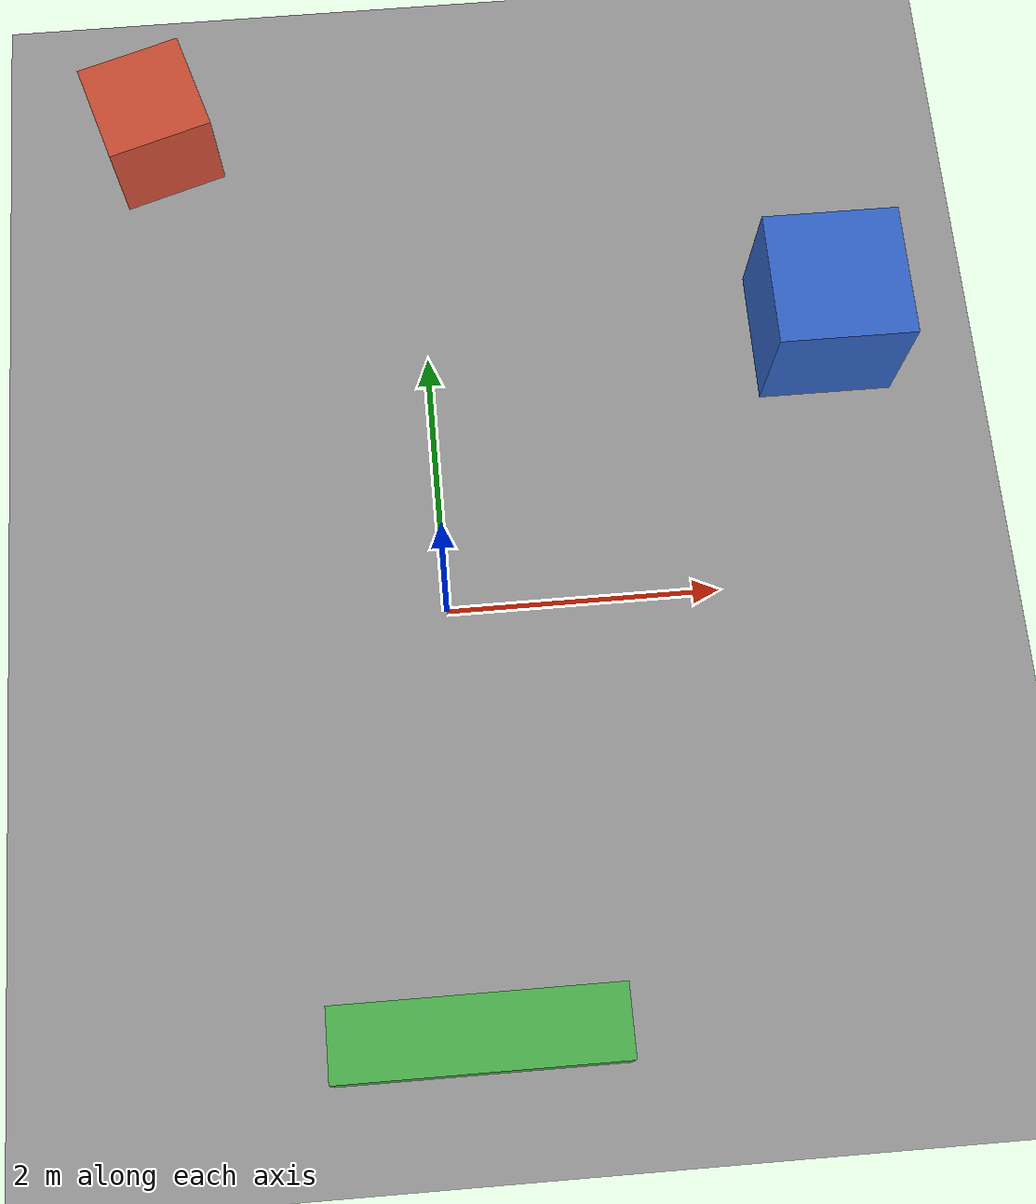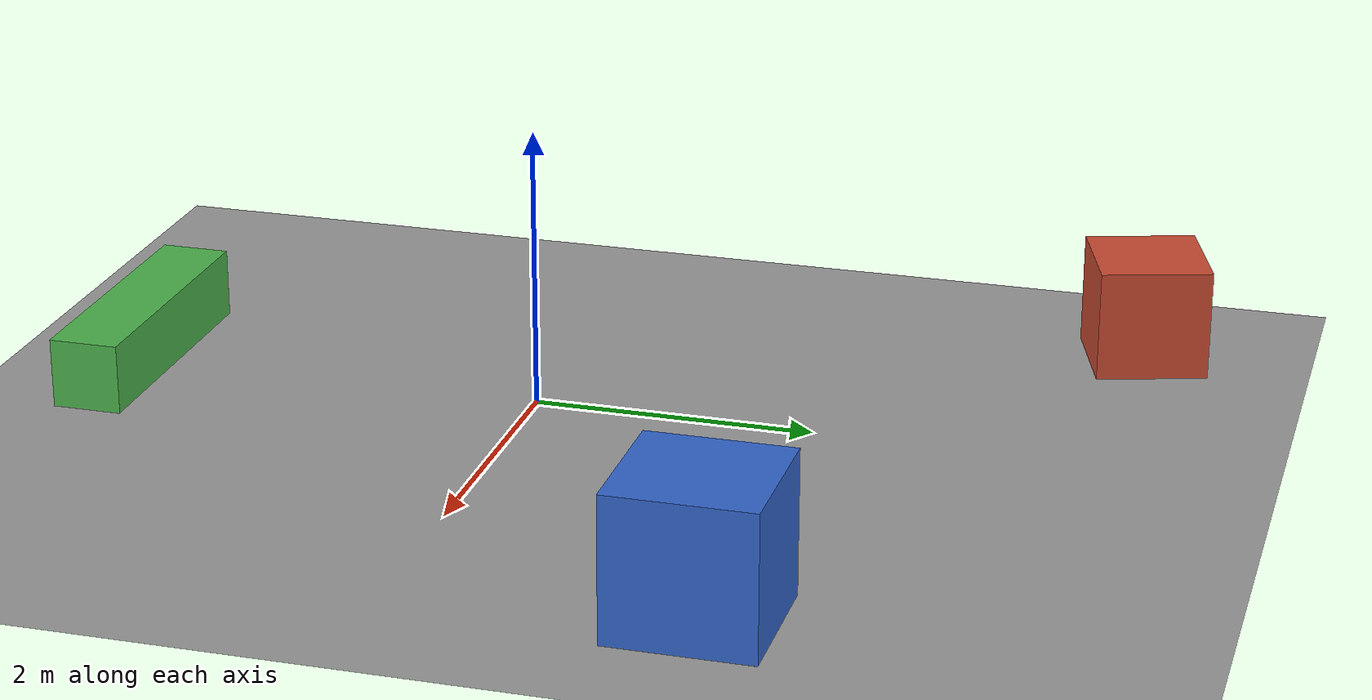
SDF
<?xml version="1.0" ?>
<sdf version="1.7">
  <world name="sim_playground">
    <physics type="ode">
      <max_step_size>0.001</max_step_size>
      <real_time_factor>1.0</real_time_factor>
    </physics>
    <plugin name="gazebo_ros_clock" filename="libgazebo_ros_init.so">
      <ros>
        <namespace>/</namespace>
      </ros>
    </plugin>

    <light name="sun" type="directional">
      <pose>0 0 10 0 0 0</pose>
      <diffuse>0.9 0.9 0.9 1</diffuse>
      <direction>-0.5 0.2 -1</direction>
    </light>

    <model name="ground_plane">
      <static>true</static>
      <link name="link">
        <collision name="collision">
          <geometry>
            <plane>
              <normal>0 0 1</normal>
              <size>80 80</size>
            </plane>
          </geometry>
        </collision>
        <visual name="visual">
          <geometry>
            <plane>
              <normal>0 0 1</normal>
              <size>80 80</size>
            </plane>
          </geometry>
          <material>
            <ambient>0.5 0.5 0.5 1</ambient>
            <diffuse>0.6 0.6 0.6 1</diffuse>
          </material>
        </visual>
      </link>
    </model>

    <model name="box_1">
      <pose>3 2 0.5 0 0 0</pose>
      <link name="link">
        <collision name="collision">
          <geometry><box><size>1 1 1</size></box></geometry>
        </collision>
        <visual name="visual">
          <geometry><box><size>1 1 1</size></box></geometry>
          <material><ambient>0.2 0.4 0.8 1</ambient></material>
        </visual>
        <inertial><mass>1</mass></inertial>
      </link>
    </model>

    <model name="box_2">
      <pose>-2 4 0.4 0 0 0.3</pose>
      <link name="link">
        <collision name="collision">
          <geometry><box><size>0.8 0.8 0.8</size></box></geometry>
        </collision>
        <visual name="visual">
          <geometry><box><size>0.8 0.8 0.8</size></box></geometry>
          <material><ambient>0.8 0.3 0.2 1</ambient></material>
        </visual>
        <inertial><mass>1</mass></inertial>
      </link>
    </model>

    <model name="box_3">
      <pose>0 -3 0.25 0 0 0</pose>
      <link name="link">
        <collision name="collision">
          <geometry><box><size>2 0.5 0.5</size></box></geometry>
        </collision>
        <visual name="visual">
          <geometry><box><size>2 0.5 0.5</size></box></geometry>
          <material><ambient>0.3 0.7 0.3 1</ambient></material>
        </visual>
        <inertial><mass>1</mass></inertial>
      </link>
    </model>
  </world>
</sdf>
